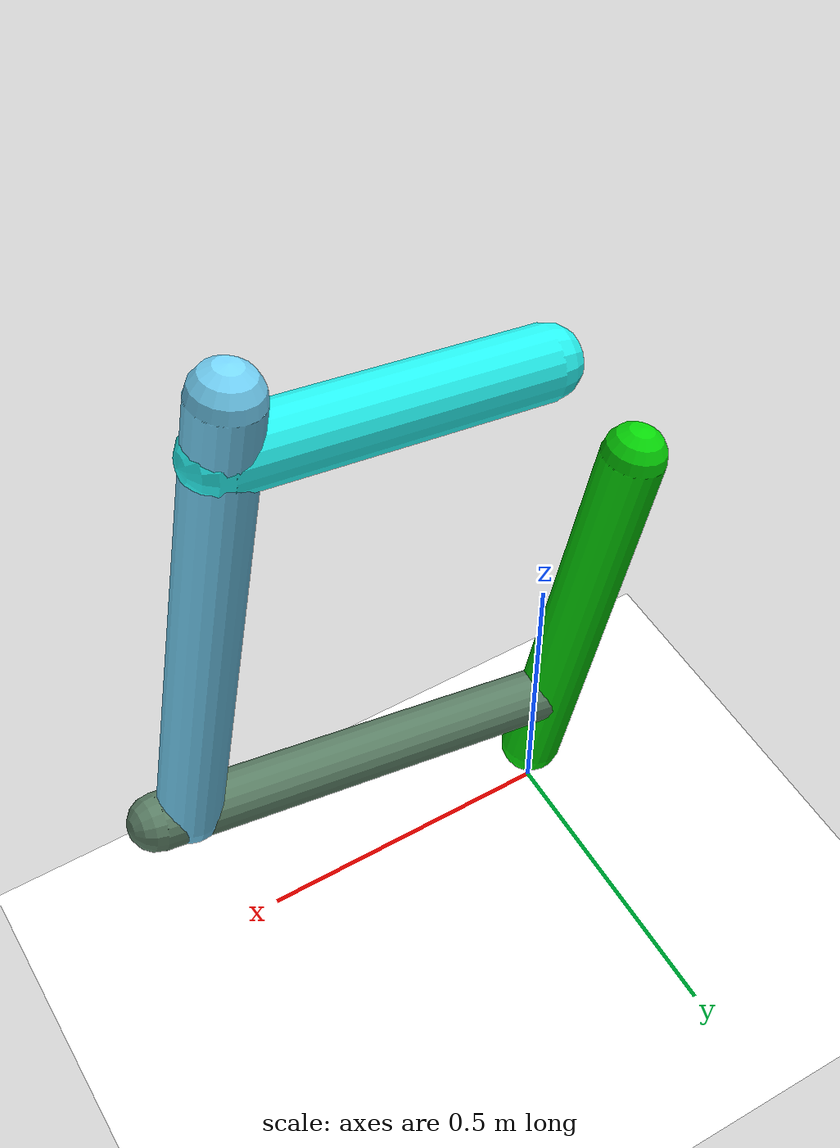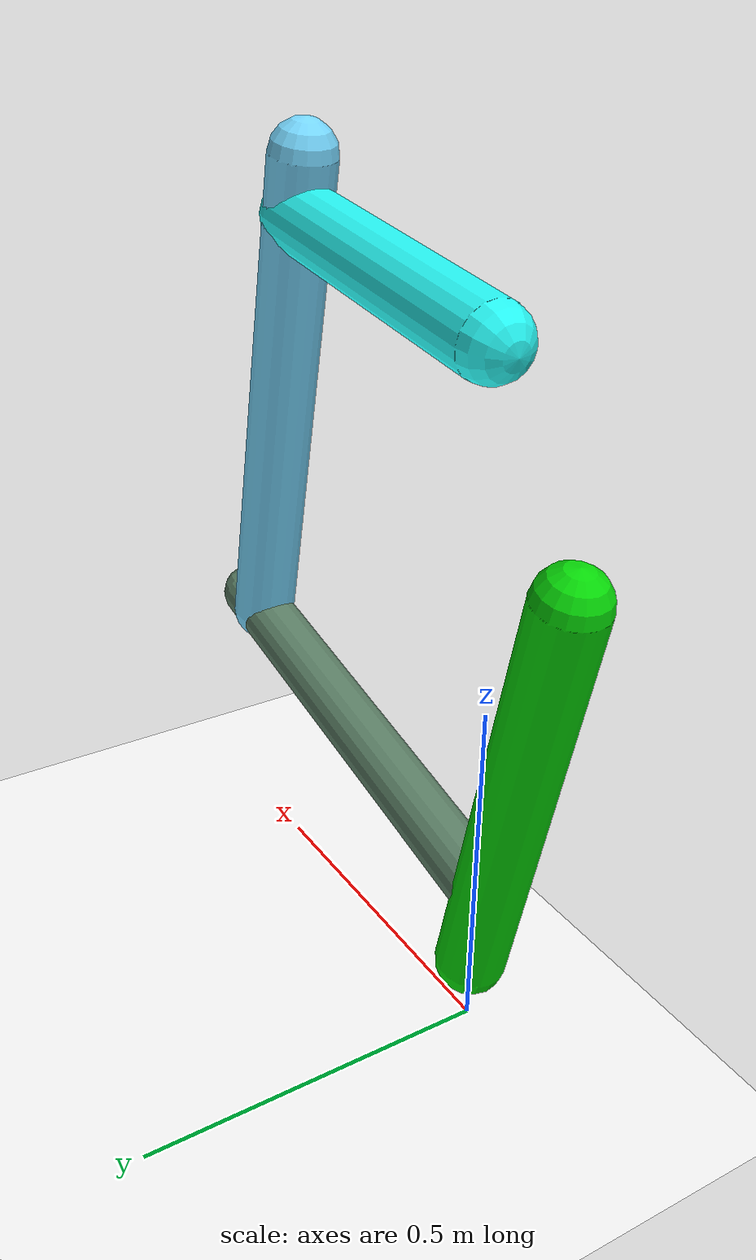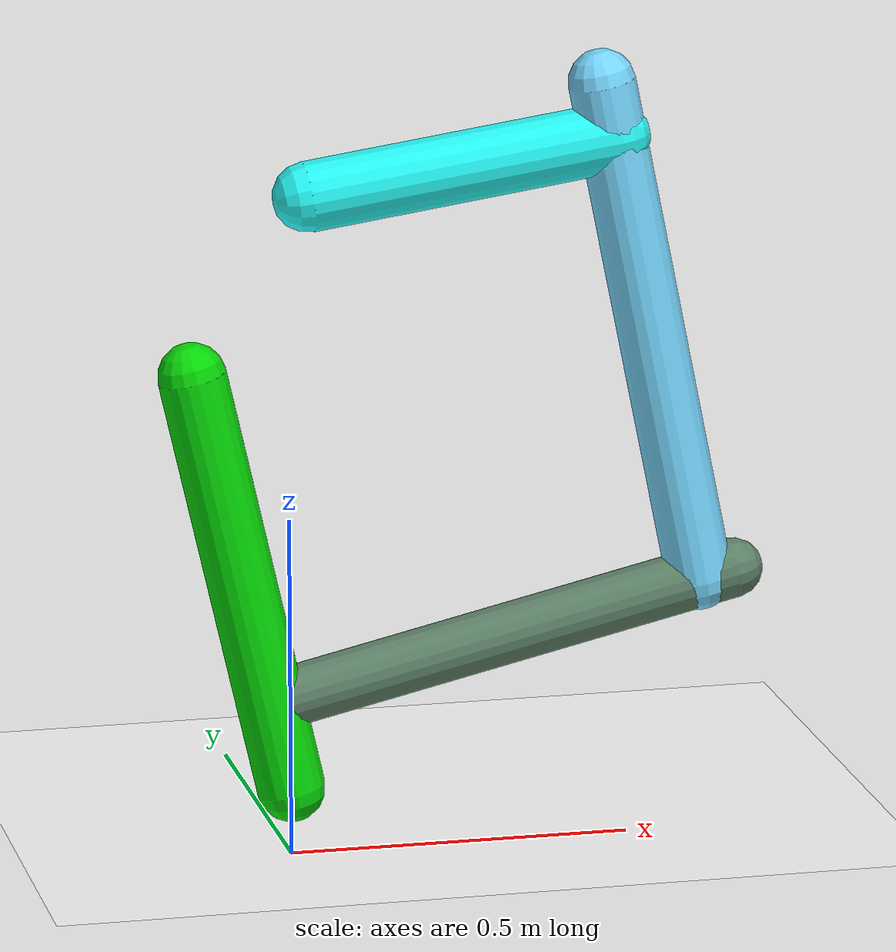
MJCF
<mujoco model="morphology">
  <option timestep="0.01"/>
  <default>
    <default class="/"/>
  </default>
  <asset>
    <texture name="texplane" type="2d" builtin="checker" rgb1="0.1 0.2 0.3" rgb2="0.2 0.3 0.4" width="300" height="300"/>
    <material name="MatPlane" class="/" texture="texplane" texrepeat="20 20" specular="1" shininess="1" reflectance="0.5"/>
  </asset>
  <worldbody>
    <light name="//unnamed_light_0" class="/" directional="true" pos="0 0 1.5" dir="0 0 -1.3" cutoff="1e+02" exponent="1" diffuse="1 1 1" specular="0.1 0.1 0.1"/>
    <geom name="ground" class="/" type="plane" size="15 15 0.5" material="MatPlane" rgba="1 1 1 1"/>
    <body name="body" pos="0 0 0.1">
      <geom name="geom0" class="/" type="capsule" contype="1" conaffinity="1" condim="3" size="0.05" rgba="0.028 0.85 0.03 1" friction="0.4 0.1 0.1" fromto="0 0 0 -0.14 0 0.62"/>
      <body name="body1" pos="-0.031 0 0.13">
        <geom name="geom1" class="/" type="capsule" contype="1" conaffinity="1" condim="3" size="0.044" rgba="0.36 0.5 0.4 1" friction="0.4 0.1 0.1" fromto="0 0 0 0.69 0 0.16"/>
        <body name="body2" pos="0.64 0 0.15">
          <geom name="geom2" class="/" type="capsule" contype="1" conaffinity="1" condim="3" size="0.049" rgba="0.46 0.84 0.99 1" friction="0.4 0.1 0.1" fromto="0 0 0 -0.15 0 0.74"/>
          <body name="body3" pos="-0.13 0 0.66">
            <geom name="geom3" class="/" type="capsule" contype="1" conaffinity="1" condim="3" size="0.051" rgba="0.15 0.96 0.95 1" friction="0.4 0.1 0.1" fromto="0 0 0 -0.45 0 -0.066"/>
            <joint name="joint3" class="/" type="hinge" axis="0 1 0" limited="true" stiffness="20" range="-64 64" armature="0.1" damping="2"/>
          </body>
          <joint name="joint2" class="/" type="hinge" axis="0 1 0" limited="true" stiffness="20" range="-66 66" armature="0.1" damping="2"/>
        </body>
        <joint name="joint1" class="/" type="hinge" axis="0 1 0" limited="true" stiffness="20" range="-60 60" armature="0.1" damping="2"/>
      </body>
      <joint name="rootx" class="/" type="slide" axis="1 0 0" limited="false" stiffness="0" armature="0" damping="0"/>
      <joint name="rootz" class="/" type="slide" axis="0 0 1" limited="false" stiffness="0" armature="0" damping="0"/>
      <joint name="rooty" class="/" type="hinge" axis="0 1 0" limited="false" stiffness="0" armature="0" damping="0"/>
    </body>
  </worldbody>
  <actuator>
    <motor name="motor3" class="/" ctrllimited="true" ctrlrange="-1 1" gear="1.4e+02" joint="joint3"/>
    <motor name="motor2" class="/" ctrllimited="true" ctrlrange="-1 1" gear="1.8e+02" joint="joint2"/>
    <motor name="motor1" class="/" ctrllimited="true" ctrlrange="-1 1" gear="1.3e+02" joint="joint1"/>
  </actuator>
  <sensor>
    <subtreelinvel name="velocity" body="body"/>
  </sensor>
</mujoco>
